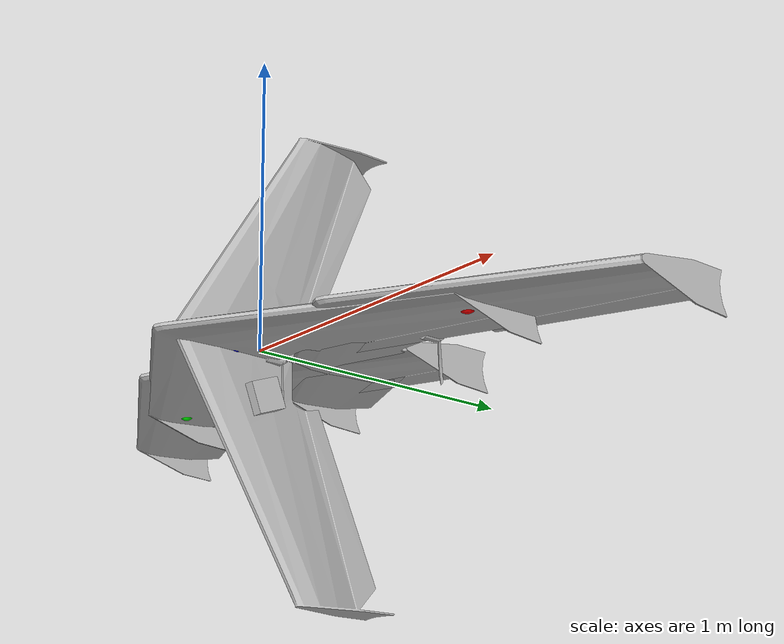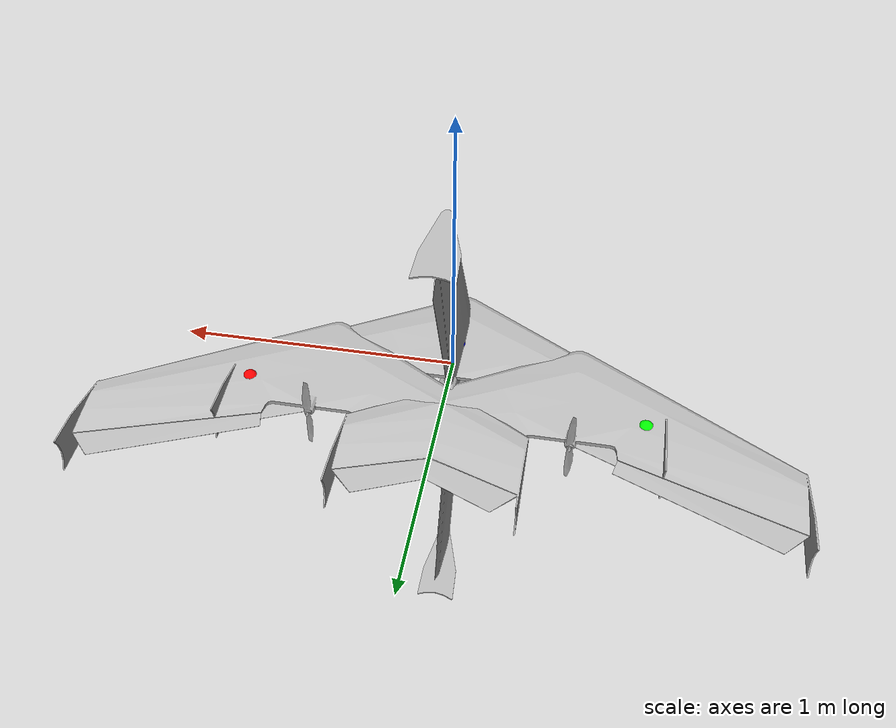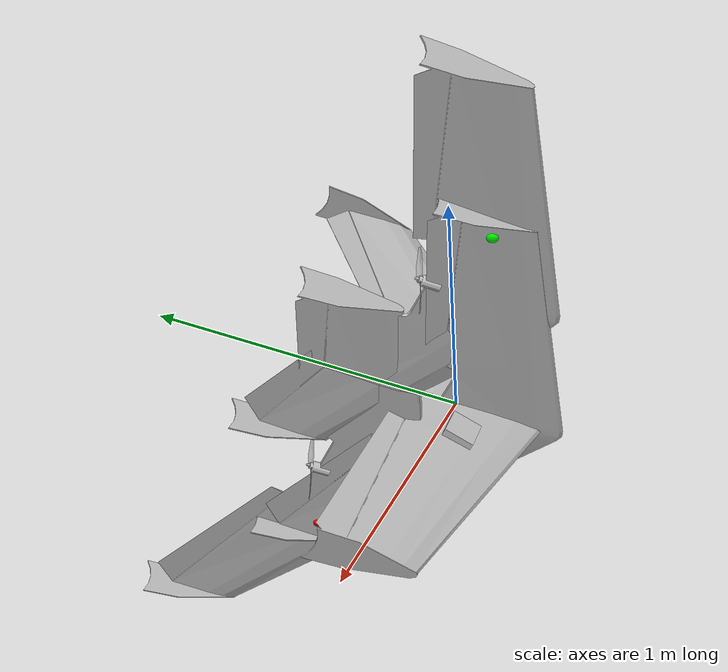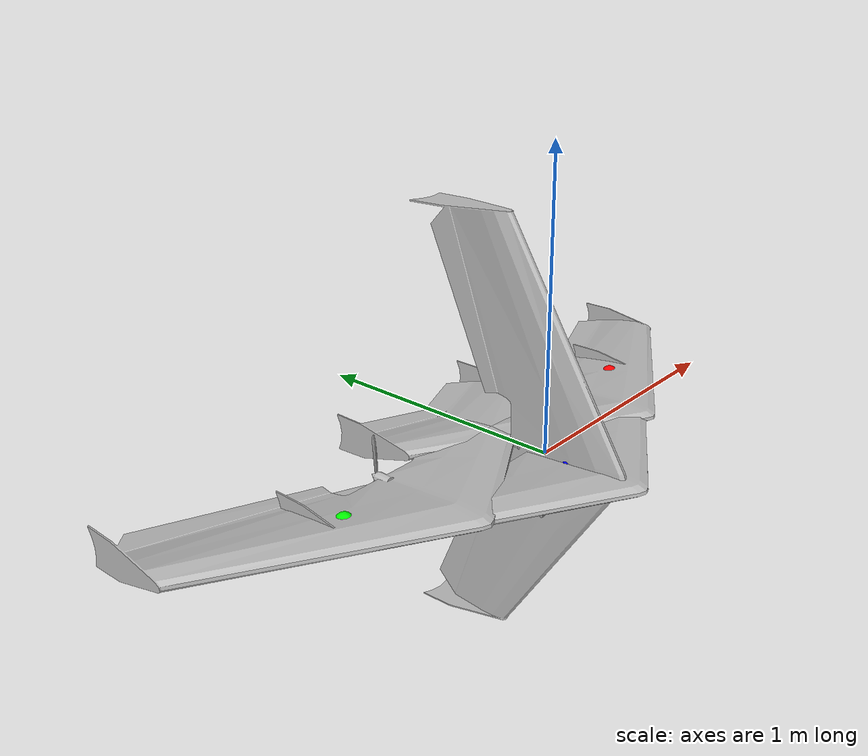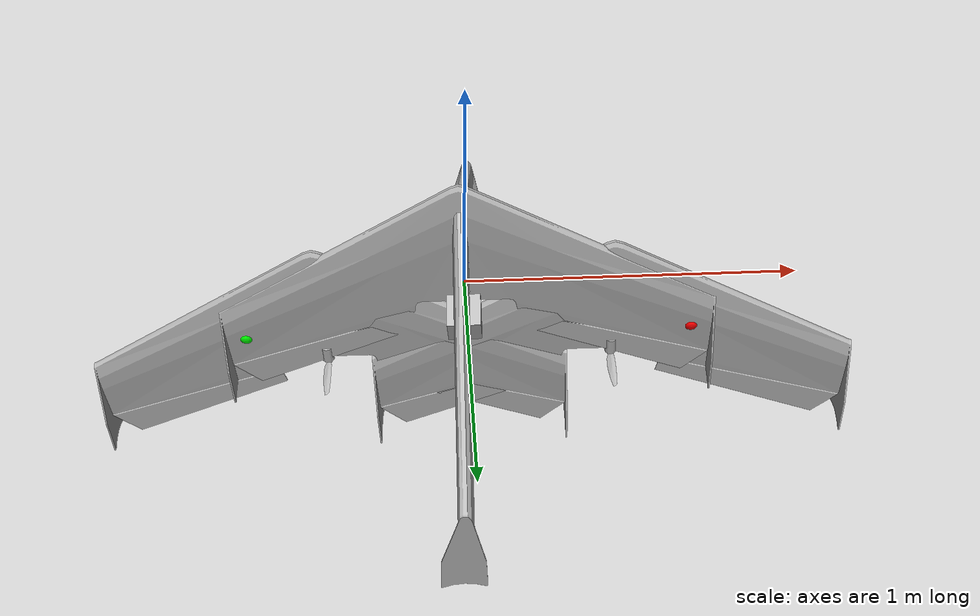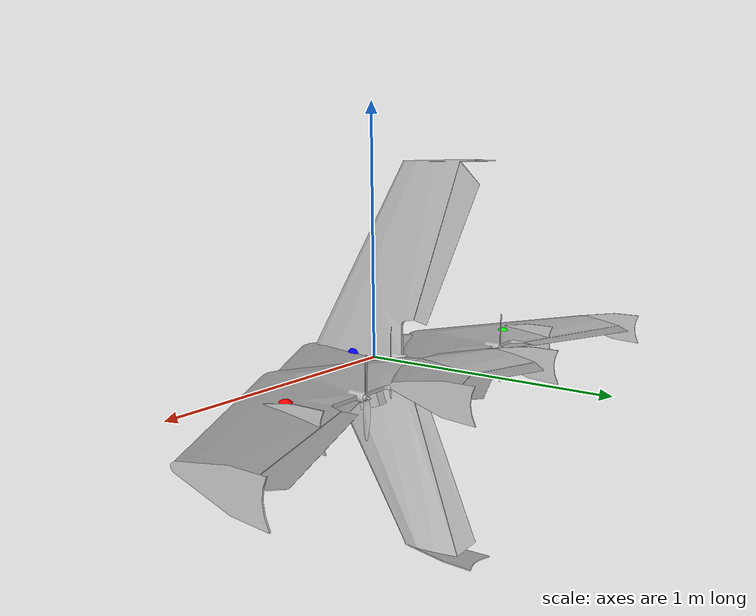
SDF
<?xml version="1.0" ?>
<sdf version="1.9">
  <model name="zephyr_with_ardupilot_andcam">
    <include>
      <uri>model://zephyr</uri>
    </include>

  <link name='camera_link'>
        <pose>0.000000000000000003 0.000000000000000003 -0.150000000000000003 0 0.34906585 -1.5707963267948966</pose>
        <inertial>
          <mass>0.10000000000000001</mass>
          <inertia>
            <ixx>0.00016666700000000001</ixx>
            <iyy>0.00016666700000000001</iyy>
            <izz>0.00016666700000000001</izz>
            <ixy>0</ixy>
            <ixz>0</ixz>
            <iyz>0</iyz>
          </inertia>
          <pose>0 0 0 0 0 0</pose>
        </inertial>
        <collision name='collision'>
          <geometry>
            <box>
              <size>0.10000000000000001 0.10000000000000001 0.10000000000000001</size>
            </box>
          </geometry>
          <surface>
            <friction>
              <ode/>
            </friction>
            <bounce/>
            <contact/>
          </surface>
        </collision>
        <visual name='visual'>
          <geometry>
            <box>
              <size>0.10000000000000001 0.10000000000000001 0.10000000000000001</size>
            </box>
          </geometry>
        </visual>
        <sensor name='camera' type='camera'>
          <pose>0 0 0 0 0 0</pose>
          <topic>camera</topic>
          <update_rate>5</update_rate>
          <enable_metrics>false</enable_metrics>
          <camera name='__default__'>
            <pose>0 0 0 0 0 0</pose>
            <horizontal_fov>1.0469999999999999</horizontal_fov>
            <image>
              <width>1280</width>
              <height>720</height>
              <format>RGB_INT8</format>
              <anti_aliasing>0</anti_aliasing>
            </image>
            <camera_info_topic>__default__</camera_info_topic>
            <trigger_topic></trigger_topic>
            <triggered>false</triggered>
            <clip>
              <near>0.10000000000000001</near>
              <far>1000</far>
            </clip>
            <save enabled='false'>
              <path>__default__</path>
            </save>
            <visibility_mask>4294967295</visibility_mask>
            <noise>
              <type>none</type>
              <mean>0</mean>
              <stddev>0</stddev>
            </noise>
            <distortion>
              <k1>0</k1>
              <k2>0</k2>
              <k3>0</k3>
              <p1>0</p1>
              <p2>0</p2>
              <center>0.5 0.5</center>
            </distortion>
            <lens>
              <type>stereographic</type>
              <scale_to_hfov>true</scale_to_hfov>
              <cutoff_angle>1.5707963267948966</cutoff_angle>
              <env_texture_size>256</env_texture_size>
            </lens>
            <optical_frame_id></optical_frame_id>
          </camera>
        </sensor>
        <enable_wind>false</enable_wind>
      </link>

    <joint name="camera_joint" type="fixed">
      <child>camera_link</child>
      <parent>zephyr::wing</parent>
    </joint>

    <!-- plugins -->

    <plugin filename="gz-sim-joint-state-publisher-system"
      name="gz::sim::systems::JointStatePublisher">
    </plugin>
    <!-- wing -->
    <plugin filename="gz-sim-lift-drag-system"
        name="gz::sim::systems::LiftDrag">
      <a0>0.13</a0>
      <cla>3.7</cla>
      <cda>0.06417112299</cda>
      <cma>0.0</cma>
      <alpha_stall>0.3391428111</alpha_stall>
      <cla_stall>-3.85</cla_stall>
      <cda_stall>-0.9233984055</cda_stall>
      <cma_stall>0.0</cma_stall>
      <cp>0 -0.1 0</cp>
      <area>0.50</area>
      <air_density>1.2041</air_density>
      <forward>0 -1 0</forward>
      <upward>0 0 1</upward>
      <link_name>zephyr::wing</link_name>
    </plugin>
    <!-- left_wing -->
    <plugin filename="gz-sim-lift-drag-system"
        name="gz::sim::systems::LiftDrag">
      <a0>0.15</a0>
      <cla>6.8</cla>
      <cda>0.06417112299</cda>
      <cma>0.0</cma>
      <alpha_stall>0.6391428111</alpha_stall>
      <cla_stall>-3.85</cla_stall>
      <cda_stall>-0.9233984055</cda_stall>
      <cma_stall>0.0</cma_stall>
      <cp>0.7 0.20 0</cp>
      <area>0.10</area>
      <air_density>1.2041</air_density>
      <forward>0 -1 0</forward>
      <upward>0 0 1</upward>
      <link_name>zephyr::wing</link_name>
      <control_joint_name>zephyr::flap_left_joint</control_joint_name>
      <control_joint_rad_to_cl>-5.0</control_joint_rad_to_cl>
    </plugin>
    <!-- right_wing -->
    <plugin filename="gz-sim-lift-drag-system"
        name="gz::sim::systems::LiftDrag">
      <a0>0.15</a0>
      <cla>6.8</cla>
      <cda>0.06417112299</cda>
      <cma>0.0</cma>
      <alpha_stall>0.6391428111</alpha_stall>
      <cla_stall>-3.85</cla_stall>
      <cda_stall>-0.9233984055</cda_stall>
      <cma_stall>0.0</cma_stall>
      <cp>-0.7 0.20 0</cp>
      <area>0.10</area>
      <air_density>1.2041</air_density>
      <forward>0 -1 0</forward>
      <upward>0 0 1</upward>
      <link_name>zephyr::wing</link_name>
      <control_joint_name>zephyr::flap_right_joint</control_joint_name>
      <control_joint_rad_to_cl>-5.0</control_joint_rad_to_cl>
    </plugin>
    <!-- left_rudder -->
    <plugin filename="gz-sim-lift-drag-system"
        name="gz::sim::systems::LiftDrag">
      <a0>0.0</a0>
      <cla>4.752798721</cla>
      <cda>0.6417112299</cda>
      <cma>0.0</cma>
      <alpha_stall>0.3391428111</alpha_stall>
      <cla_stall>-3.85</cla_stall>
      <cda_stall>-0.9233984055</cda_stall>
      <cma_stall>0.0</cma_stall>
      <cp>-0.76 0.30 0.025</cp>
      <area>0.12</area>
      <air_density>1.2041</air_density>
      <forward>0 -1 0</forward>
      <upward>1 0 0</upward>
      <link_name>zephyr::wing</link_name>
    </plugin>
    <!-- right_rudder -->
    <plugin filename="gz-sim-lift-drag-system"
        name="gz::sim::systems::LiftDrag">
      <a0>0.0</a0>
      <cla>4.752798721</cla>
      <cda>0.6417112299</cda>
      <cma>0.0</cma>
      <alpha_stall>0.3391428111</alpha_stall>
      <cla_stall>-3.85</cla_stall>
      <cda_stall>-0.9233984055</cda_stall>
      <cma_stall>0.0</cma_stall>
      <cp>0.76 0.30 0.025</cp>
      <area>0.12</area>
      <air_density>1.2041</air_density>
      <forward>0 -1 0</forward>
      <upward>1 0 0</upward>
      <link_name>zephyr::wing</link_name>
    </plugin>
    <!-- propeller_blade_1 -->
    <plugin filename="gz-sim-lift-drag-system"
        name="gz::sim::systems::LiftDrag">
      <a0>0.30</a0>
      <alpha_stall>1.4</alpha_stall>
      <cla>4.2500</cla>
      <cda>0.10</cda>
      <cma>0.0</cma>
      <cla_stall>-0.025</cla_stall>
      <cda_stall>0.0</cda_stall>
      <cma_stall>0.0</cma_stall>
      <area>0.02</area>
      <air_density>1.2041</air_density>
      <cp>0 0 0.074205</cp>
      <forward>-1 0 0</forward>
      <upward>0 -1 0</upward>
      <link_name>zephyr::propeller</link_name>
    </plugin>
    <!-- propeller_blade_2 -->
    <plugin filename="gz-sim-lift-drag-system"
        name="gz::sim::systems::LiftDrag">
      <a0>0.30</a0>
      <alpha_stall>1.4</alpha_stall>
      <cla>4.2500</cla>
      <cda>0.10</cda>
      <cma>0.0</cma>
      <cla_stall>-0.025</cla_stall>
      <cda_stall>0.0</cda_stall>
      <cma_stall>0.0</cma_stall>
      <area>0.02</area>
      <air_density>1.2041</air_density>
      <cp>0 0 -0.074205</cp>
      <forward>1 0 0</forward>
      <upward>0 -1 0</upward>
      <link_name>zephyr::propeller</link_name>
    </plugin>

    <plugin filename="gz-sim-apply-joint-force-system"
      name="gz::sim::systems::ApplyJointForce">
      <joint_name>zephyr::propeller_joint</joint_name>
    </plugin>
    <plugin filename="gz-sim-apply-joint-force-system"
      name="gz::sim::systems::ApplyJointForce">
      <joint_name>zephyr::flap_left_joint</joint_name>
    </plugin>
    <plugin filename="gz-sim-apply-joint-force-system"
      name="gz::sim::systems::ApplyJointForce">
      <joint_name>zephyr::flap_right_joint</joint_name>
    </plugin>

    <plugin name="ArduPilotPlugin" filename="ArduPilotPlugin">
      <!-- Port settings -->
      <fdm_addr>127.0.0.1</fdm_addr>
      <fdm_port_in>9002</fdm_port_in>
      <connectionTimeoutMaxCount>5</connectionTimeoutMaxCount>
      <lock_step>1</lock_step>

      <modelXYZToAirplaneXForwardZDown degrees="true">0 0 0 180 0 -90</modelXYZToAirplaneXForwardZDown>
      <gazeboXYZToNED degrees="true">0 0 0 180 0 90</gazeboXYZToNED>

      <!-- Sensors -->

      <imuName>zephyr::imu_link::imu_sensor</imuName>

      <!--
          incoming control command [0, 1]
          so offset it by 0 to get [0, 1]
          and divide max target by 1.
          offset = 0
          multiplier = 838 max rpm / 1 = 838
        -->

      <!--
          SERVO3_FUNCTION   70 (Throttle)
          SERVO3_MAX        1900
          SERVO3_MIN        1100
          SERVO3_REVERSED   0
          SERVO3_TRIM       1100
       -->
      <control channel="2">
        <jointName>zephyr::propeller_joint</jointName>
        <useForce>1</useForce>
        <multiplier>838</multiplier>
        <offset>0</offset>
        <servo_min>1100</servo_min>
        <servo_max>1900</servo_max>
        <type>VELOCITY</type>
        <p_gain>0.20</p_gain>
        <i_gain>0</i_gain>
        <d_gain>0</d_gain>
        <i_max>0</i_max>
        <i_min>0</i_min>
        <cmd_max>2.5</cmd_max>
        <cmd_min>0.0</cmd_min>
      </control>

      <control channel="0">
        <jointName>zephyr::flap_left_joint</jointName>
        <useForce>1</useForce>
        <multiplier>-1.048</multiplier>
        <offset>-0.5</offset>
        <servo_min>1100</servo_min>
        <servo_max>1900</servo_max>
        <type>POSITION</type>
        <p_gain>10.0</p_gain>
        <i_gain>0</i_gain>
        <d_gain>0</d_gain>
        <i_max>0</i_max>
        <i_min>0</i_min>
        <cmd_max>2.5</cmd_max>
        <cmd_min>-2.5</cmd_min>
      </control>

      <!--
          SERVO2_FUNCTION   78 (Elevon Right)
          SERVO2_MAX        1900
          SERVO2_MIN        1100
          SERVO2_REVERSED   1
          SERVO2_TRIM       1500
       -->
      <control channel="1">
        <jointName>zephyr::flap_right_joint</jointName>
        <useForce>1</useForce>
        <multiplier>-1.048</multiplier>
        <offset>-0.5</offset>
        <servo_min>1100</servo_min>
        <servo_max>1900</servo_max>
        <type>POSITION</type>
        <p_gain>10.0</p_gain>
        <i_gain>0</i_gain>
        <d_gain>0</d_gain>
        <i_max>0</i_max>
        <i_min>0</i_min>
        <cmd_max>2.5</cmd_max>
        <cmd_min>-2.5</cmd_min>
      </control>

    </plugin>

  </model>
</sdf>

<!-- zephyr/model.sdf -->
<sdf version="1.9">
  <model name="zephyr">
    <link name="wing">
      <inertial>
        <pose>0 -0.12 0 0 0 0</pose>
        <mass>1.5</mass>
        <inertia>
          <ixx>0.083137104</ixx>
          <ixy>0</ixy>
          <iyy>0.387382402</iyy>
          <ixz>0</ixz>
          <iyz>0</iyz>
          <izz>0.469845106</izz>
        </inertia>
      </inertial>
      <visual name="visual">
        <geometry>
          <mesh>
            <uri>model://zephyr/meshes/wing.dae</uri>
            <submesh>
              <name>Wing</name>
              <center>true</center>
            </submesh>
          </mesh>
        </geometry>
      </visual>
      <collision name="body_collision">
        <geometry>
          <mesh>
            <uri>model://zephyr/meshes/wing.dae</uri>
            <submesh>
              <name>Wing</name>
              <center>true</center>
            </submesh>
          </mesh>
        </geometry>
      </collision>
      <collision name="right_rudder_collision">
        <pose>-0.76435 0.33918 0.002 -0.03 0 0</pose>
        <geometry>
          <box>
            <size>.005 0.12993 .12688</size>
          </box>
        </geometry>
      </collision>
      <collision name="left_rudder_collision">
        <pose>0.76435 0.33918 0.002 -0.03 0 0</pose>
        <geometry>
          <box>
            <size>.005 0.12993 .12688</size>
          </box>
        </geometry>
      </collision>

      <!-- save center of pressure locations for debugging -->
      <visual name="cp_wing">
        <pose>0 -0.1 0.0 0 0 0</pose>
        <geometry>
          <sphere>
            <radius>0.03</radius>
          </sphere>
        </geometry>
        <material>
          <ambient>0 0 1</ambient>
          <diffuse>0 0 1</diffuse>
          <specular>0.1 0.1 0.1 1</specular>
        </material>
      </visual>
      <visual name="cp_flap_left">
        <pose>0.7 0.20 0 0 0 0</pose>
        <geometry>
          <sphere>
            <radius>0.03</radius>
          </sphere>
        </geometry>
        <material>
          <ambient>1 0 0</ambient>
          <diffuse>1 0 0</diffuse>
          <specular>0.1 0.1 0.1 1</specular>
        </material>
      </visual>
      <visual name="cp_flap_right">
        <pose>-0.7 0.20 0 0 0 0</pose>
        <geometry>
          <sphere>
            <radius>0.03</radius>
          </sphere>
        </geometry>
        <material>
          <ambient>0 1 0</ambient>
          <diffuse>0 1 0</diffuse>
          <specular>0.1 0.1 0.1 1</specular>
        </material>
      </visual>

    </link>
    <link name="propeller">
      <pose degrees="true">0 0.07 0.008 0 90 0</pose>
      <inertial>
        <mass>.05</mass>
        <inertia>
          <ixx>0.000367571</ixx>
          <ixy>0</ixy>
          <iyy>0.00036985</iyy>
          <ixz>0</ixz>
          <iyz>0</iyz>
          <izz>0.000003187</izz>
        </inertia>
      </inertial>
      <visual name="visual">
        <geometry>
          <mesh>
            <uri>model://zephyr/meshes/wing.dae</uri>
            <submesh>
              <name>Propeller</name>
              <center>true</center>
            </submesh>
          </mesh>
        </geometry>
      </visual>
      <collision name="blade1">
        <pose>0 0 0.074205 0 0  0.3</pose>
        <geometry>
          <box>
            <size>0.02561 0.00541 0.14841</size>
          </box>
        </geometry>
      </collision>
      <collision name="blade2">
        <pose>0 0 -0.074205 0 0  -0.3</pose>
        <geometry>
          <box>
            <size>0.02561 0.00541 0.14841</size>
          </box>
        </geometry>
      </collision>
    </link>
    <link name="flap_left">
      <pose>0.4530 .239 0.007 0 0 0</pose>
      <inertial>
        <pose>0 0 0 0 0 0.32445671</pose>
        <mass>.1</mass>
        <inertia>
          <ixx>0.000102319</ixx>
          <ixy>0</ixy>
          <iyy>0.00334417</iyy>
          <ixz>0</ixz>
          <iyz>0</iyz>
          <izz>0.003446072</izz>
        </inertia>
      </inertial>
      <visual name="visual">
        <geometry>
          <mesh>
            <uri>model://zephyr/meshes/wing.dae</uri>
            <submesh>
              <name>Flap_Left</name>
              <center>true</center>
            </submesh>
          </mesh>
        </geometry>
      </visual>
      <collision name="collision">
        <pose>-0.01 0.01 0 0 0 0.32445671</pose>
        <geometry>
          <box>
            <size>0.633463031 0.110694312 0.005</size>
          </box>
        </geometry>
      </collision>
    </link>
    <link name="flap_right">
      <pose>-0.4530 .239 0.007 0 0 0</pose>
      <inertial>
        <pose>0 0 0 0 0 -0.32445671</pose>
        <mass>.1</mass>
        <inertia>
          <ixx>0.000102319</ixx>
          <ixy>0</ixy>
          <iyy>0.00334417</iyy>
          <ixz>0</ixz>
          <iyz>0</iyz>
          <izz>0.003446072</izz>
        </inertia>
      </inertial>
      <visual name="visual">
        <geometry>
          <mesh>
            <uri>model://zephyr/meshes/wing.dae</uri>
            <submesh>
              <name>Flap_Right</name>
              <center>true</center>
            </submesh>
          </mesh>
        </geometry>
      </visual>
      <collision name="collision">
        <pose>0.01 0.01 0 0 0 -0.32445671</pose>
        <geometry>
          <box>
            <size>0.633463031 0.110694312 0.005</size>
          </box>
        </geometry>
      </collision>
    </link>
    <joint name="propeller_joint" type="revolute">
      <parent>wing</parent>
      <child>propeller</child>
      <axis>
        <xyz>0 -1 0</xyz>
        <dynamics>
          <damping>0.002</damping>
        </dynamics>
      </axis>
    </joint>
    <joint name="flap_left_joint" type="revolute">
      <parent>wing</parent>
      <child>flap_left</child>
      <pose>0 -0.04 0 0 0 0</pose>
      <axis>
        <xyz>1 0.330321014 0</xyz>
        <limit>
          <lower>-0.524</lower>
          <upper>0.524</upper>
        </limit>
        <dynamics>
          <damping>0.1</damping>
        </dynamics>
      </axis>
    </joint>
    <joint name="flap_right_joint" type="revolute">
      <parent>wing</parent>
      <child>flap_right</child>
      <pose>0 -0.04 0 0 0 0</pose>
      <axis>
        <xyz>1 -0.330321014 0</xyz>
        <limit>
          <lower>-0.524</lower>
          <upper>0.524</upper>
        </limit>
        <dynamics>
          <damping>0.1</damping>
        </dynamics>
      </axis>
    </joint>

    <!-- sensors -->
    <link name='imu_link'>
      <inertial>
        <pose>0 0 0 0 0 0</pose>
        <mass>0.15</mass>
        <inertia>
          <ixx>0.00002</ixx>
          <ixy>0</ixy>
          <ixz>0</ixz>
          <iyy>0.00002</iyy>
          <iyz>0</iyz>
          <izz>0.00002</izz>
        </inertia>
      </inertial>
      <sensor name="imu_sensor" type="imu">
        <gz_frame_id>imu_link</gz_frame_id>
        <pose degrees="true">0 0 0 180 0 -90</pose>
        <always_on>1</always_on>
        <update_rate>1000.0</update_rate>
      </sensor>
    </link>
    <joint name='imu_joint' type='revolute'>
      <child>imu_link</child>
      <parent>wing</parent>
      <axis>
        <xyz>0 0 1</xyz>
        <limit>
          <lower>0</lower>
          <upper>0</upper>
          <effort>0</effort>
          <velocity>0</velocity>
        </limit>
        <dynamics>
          <damping>1.0</damping>
        </dynamics>
      </axis>
    </joint>
  </model>
</sdf>
